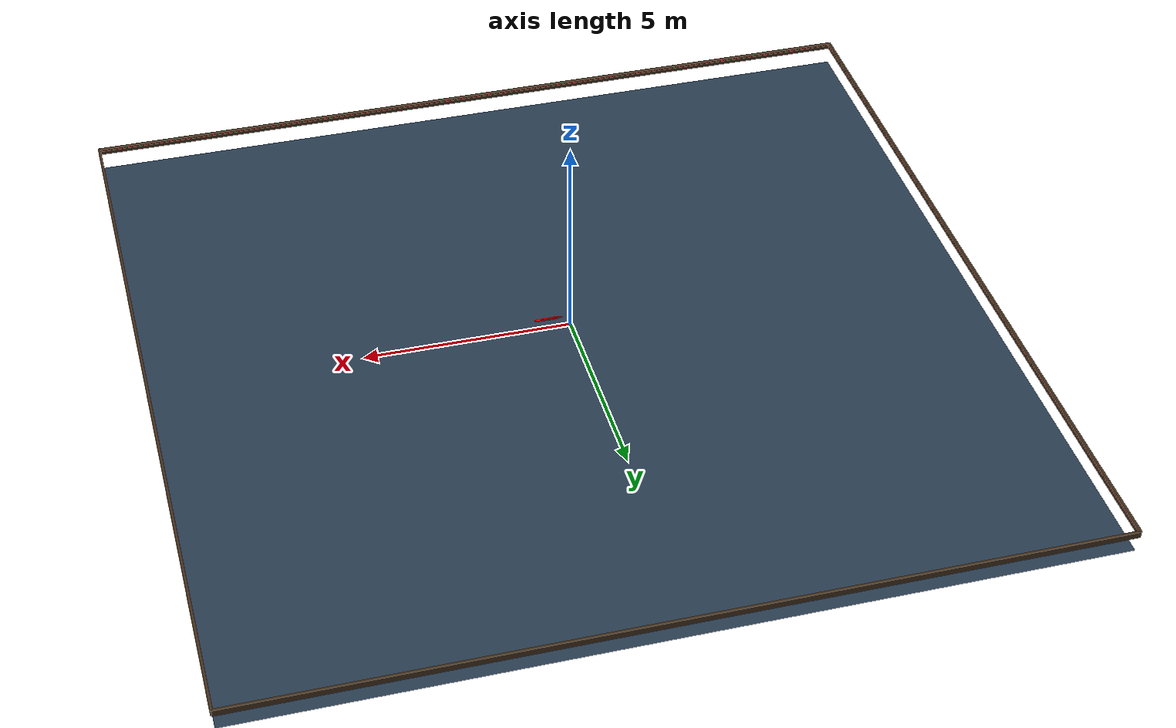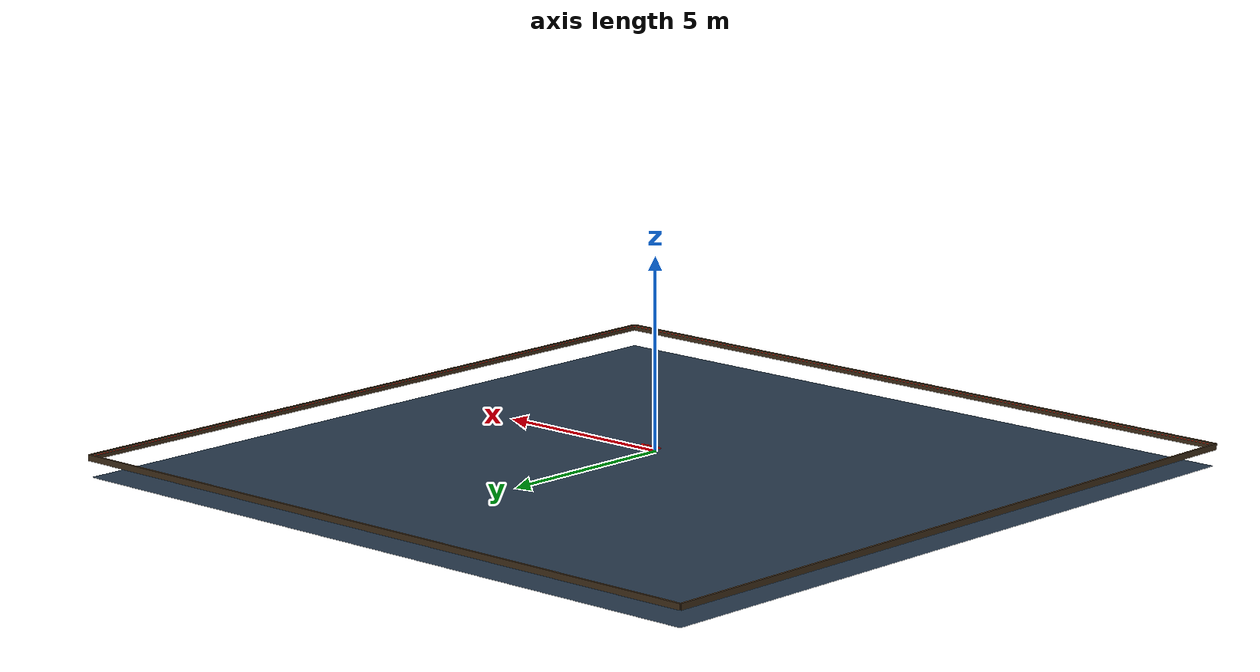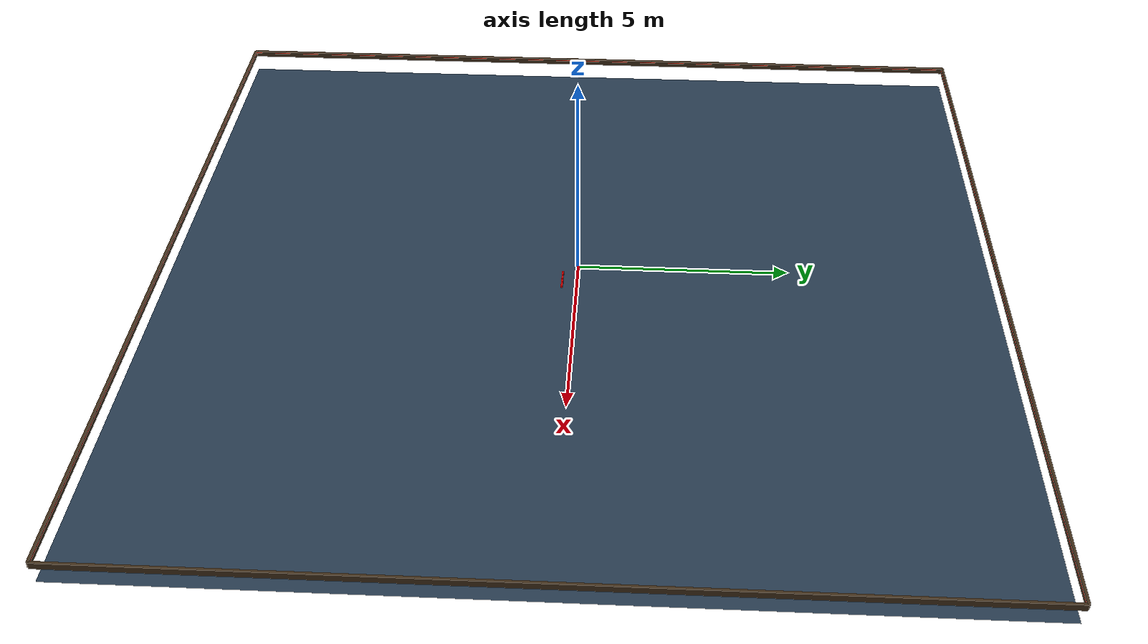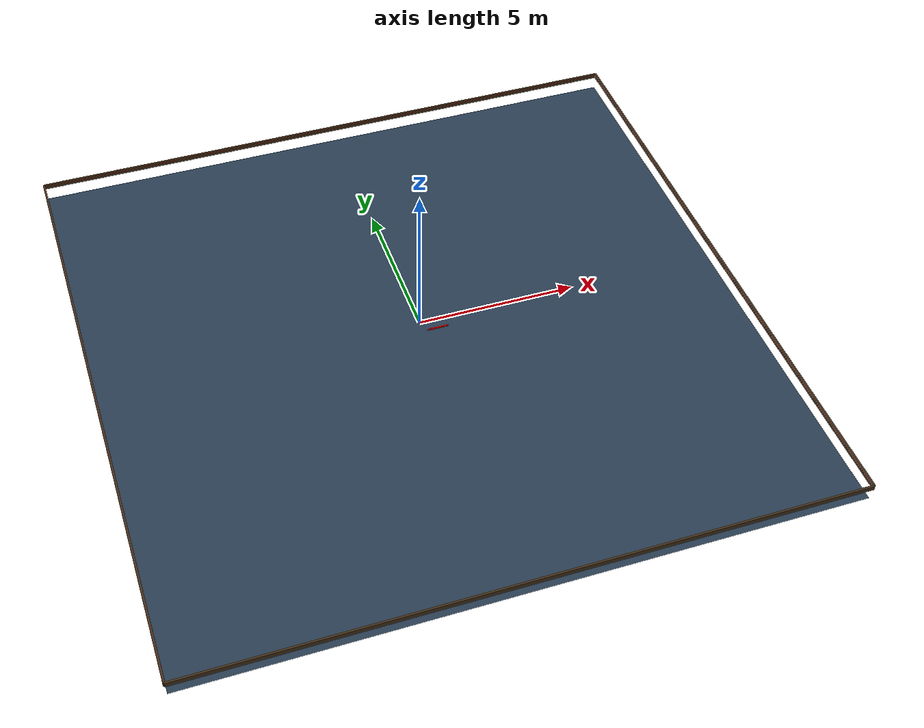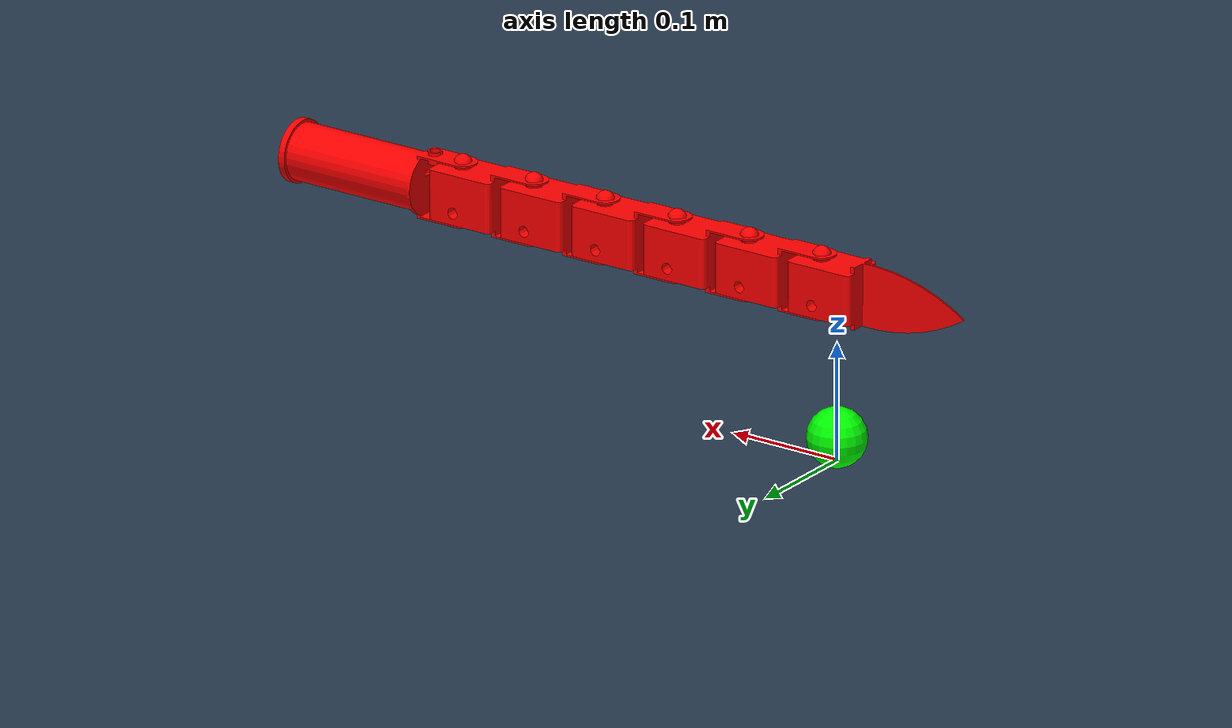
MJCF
<mujoco model="eel_urdf">
  <compiler angle="radian" meshdir="eel_urdf/meshes" />
  <include file="water_settings.xml" />
  <visual>
    <global fovy="45" offwidth="1920" offheight="1080" />
    <quality shadowsize="0" />
    <rgba fog="0 0.5 0.8 1" />
    <map fogstart="1" fogend="5" />
  </visual>
  <asset>
    <mesh name="base_link_mesh" file="base_link.STL" />
    <mesh name="servo1_mesh" file="servo1.STL" />
    <mesh name="servo2_mesh" file="servo2.STL" />
    <mesh name="servo3_mesh" file="servo3.STL" />
    <mesh name="servo4_mesh" file="servo4.STL" />
    <mesh name="servo5_mesh" file="servo5.STL" />
    <mesh name="servo6_mesh" file="servo6.STL" />
    <texture name="texplane" builtin="checker" rgb1=".2 .3 .4" rgb2=".1 .15 .2" type="2d" width="512" height="512" mark="cross" markrgb=".8 .8 .8" />
    <material name="matplane" reflectance="0.5" texture="texplane" texrepeat="4 4" texuniform="true" />
    <material name="water_visual_mat" rgba="0 0.4 0.9 0.2" reflectance="0" shininess="0" specular="0" />
    <material name="wall_brown_mat" rgba="0.25 0.18 0.10 1" reflectance="0.02" specular="0" shininess="0" />
    <material name="eel_mat" rgba="0.79216 0.81961 0.93333 1" reflectance="0.2" specular="0.35" shininess="0.4" />
    <material name="joint_marker_red" rgba="1 0 0 1" specular="0" shininess="0" reflectance="0" />
  </asset>
  <contact>
    <exclude body1="base_link" body2="servo1" />
    <exclude body1="servo1" body2="servo2" />
    <exclude body1="servo2" body2="servo3" />
    <exclude body1="servo3" body2="servo4" />
    <exclude body1="servo4" body2="servo5" />
    <exclude body1="servo5" body2="servo6" />
  </contact>
  <worldbody>
    <include file="environment_3x1_5.xml" />
    <include file="eel_body.xml" />
  </worldbody>
  <actuator>
    <position joint="servo1" kp="100" />
    <position joint="servo2" kp="100" />
    <position joint="servo3" kp="100" />
    <position joint="servo4" kp="100" />
    <position joint="servo5" kp="100" />
    <position joint="servo6" kp="100" />
  </actuator>
</mujoco>

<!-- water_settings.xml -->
<mujoco>
  <!-- Central water / fluid parameters. Edit this file first. -->
  <option timestep="0.001" integrator="RK4" density="998" viscosity="0.001" gravity="0 0 -9.81" />

  <default>
    <!-- Real mesh geoms handle collision only. -->
    <default class="eel_collision_mesh">
      <geom contype="2" conaffinity="1" group="0" rgba="1 0 0 1" />
    </default>

    <!-- Invisible simple capsules handle fluid force. Tune size in eel_body.xml if turning radius is still too large. -->
    <default class="eel_fluid_proxy">
      <geom contype="0" conaffinity="0" group="3" rgba="0 0.8 1 0.0"
            fluidshape="ellipsoid" fluidcoef="0.35 0.0 0.35 0.65 0.65" />
    </default>
  </default>
</mujoco>

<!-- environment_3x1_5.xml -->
<mujoco>
  <light directional="true" pos="0 0 5" dir="0 0 -1"
         diffuse="0.6 0.6 0.6" specular="0.15 0.15 0.15"/>
  <light pos="6.0 6.0 1" diffuse="0.15 0.2 0.25" specular="0 0 0"/>
  <light pos="-6.0 0 1" diffuse="0.25 0.25 0.3" specular="0 0 0"/>

  <!-- Shared 20 m x 20 m tank. X/Y range is -10 ~ +10 m. -->
  <geom name="floor" pos="0 0 -0.5" size="10 10 0.1" type="plane" material="matplane" contype="1" conaffinity="1"/>
  <geom name="water_surface" type="plane" pos="0 0 0" size="9.95 9.95 0.01" material="water_visual_mat" contype="0" conaffinity="0" group="1"/>

  <geom name="course_bottom" type="capsule" fromto="-10 -10 0.01 10 -10 0.01" size="0.006"
        rgba="1 0.15 0.05 0.9" contype="0" conaffinity="0" group="1"/>
  <geom name="course_right" type="capsule" fromto="10 -10 0.01 10 10 0.01" size="0.006"
        rgba="1 0.15 0.05 0.9" contype="0" conaffinity="0" group="1"/>
  <geom name="course_top" type="capsule" fromto="10 10 0.01 -10 10 0.01" size="0.006"
        rgba="1 0.15 0.05 0.9" contype="0" conaffinity="0" group="1"/>
  <geom name="course_left" type="capsule" fromto="-10 10 0.01 -10 -10 0.01" size="0.006"
        rgba="1 0.15 0.05 0.9" contype="0" conaffinity="0" group="1"/>

  <!-- Visual-only boards around the large tank; no collision in the shared viewer/training pool. -->
  <geom name="wall_bottom" type="box" pos="0 -10.03 -0.02" size="10.03 0.03 0.08"
        material="wall_brown_mat" contype="0" conaffinity="0" group="0"/>
  <geom name="wall_top" type="box" pos="0 10.03 -0.02" size="10.03 0.03 0.08"
        material="wall_brown_mat" contype="0" conaffinity="0" group="0"/>
  <geom name="wall_left" type="box" pos="-10.03 0 -0.02" size="0.03 10.03 0.08"
        material="wall_brown_mat" contype="0" conaffinity="0" group="0"/>
  <geom name="wall_right" type="box" pos="10.03 0 -0.02" size="0.03 10.03 0.08"
        material="wall_brown_mat" contype="0" conaffinity="0" group="0"/>

  <geom name="start_marker" type="sphere" pos="0 0 0.02" size="0.025"
        rgba="0 1 0 0.9" contype="0" conaffinity="0" group="1"/>
</mujoco>

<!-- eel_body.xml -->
<mujoco>
    <body name="base_link" pos="0.65 -0.35 -0.02">
      <joint name="root_x" type="slide" pos="0 0 0" axis="1 0 0" limited="false" armature="0.01" damping="0.1" />
      <joint name="root_y" type="slide" pos="0 0 0" axis="0 1 0" limited="false" armature="0.01" damping="0.1" />
      <joint name="root_z_rot" type="hinge" pos="0 0 0" axis="0 0 1" limited="false" armature="0.01" damping="0.1" />
      <inertial pos="0.062748 2.5587E-16 0.00026796" mass="0.083903" fullinertia="4.3479E-05 9.8485E-05 9.6089E-05 -1.3947E-21 5.4417E-08 -3.0251E-23" />
      <geom name="base_link_collision" type="mesh" mesh="base_link_mesh" class="eel_collision_mesh" />
      <geom name="base_link_fluid" type="capsule" fromto="0.000 0 0 0.120 0 0" size="0.030" class="eel_fluid_proxy" />
      <geom name="base_link_visual" type="mesh" mesh="base_link_mesh" contype="0" conaffinity="0" group="1" material="eel_mat" />
      <body name="servo1" pos="-0.035 0 0.025706">
        <geom name="servo1_joint_marker" type="sphere" size="0.008" pos="0 0 0" material="joint_marker_red" contype="0" conaffinity="0" group="2" />
        <inertial pos="-0.01159 -6.9584E-08 -0.025118" mass="0.11323" fullinertia="3.6169E-05 6.3328E-05 5.9619E-05 -4.7019E-10 -1.6398E-07 -4.8085E-12" />
        <joint name="servo1" pos="0 0 0" axis="0 0 -1" range="-1.5 1.5" actuatorfrcrange="-10 10" armature="0.05" damping="1.5" />
        <geom name="servo1_collision" type="mesh" mesh="servo1_mesh" class="eel_collision_mesh" />
        <geom name="servo1_fluid" type="capsule" fromto="-0.070 0 0 -0.005 0 0" size="0.030" class="eel_fluid_proxy" />
        <geom name="servo1_visual" type="mesh" mesh="servo1_mesh" contype="0" conaffinity="0" group="1" material="eel_mat" />
        <body name="servo2" pos="-0.072 0 0">
          <geom name="servo2_joint_marker" type="sphere" size="0.008" pos="0 0 0" material="joint_marker_red" contype="0" conaffinity="0" group="2" />
          <inertial pos="-0.01159 -6.9584E-08 -0.025118" mass="0.11323" fullinertia="3.6169E-05 6.3328E-05 5.9619E-05 -4.7019E-10 -1.6398E-07 -4.8085E-12" />
          <joint name="servo2" pos="0 0 0" axis="0 0 -1" range="-1.5 1.5" actuatorfrcrange="-10 10" armature="0.05" damping="1.5" />
          <geom name="servo2_collision" type="mesh" mesh="servo2_mesh" class="eel_collision_mesh" />
          <geom name="servo2_fluid" type="capsule" fromto="-0.070 0 0 -0.005 0 0" size="0.030" class="eel_fluid_proxy" />
          <geom name="servo2_visual" type="mesh" mesh="servo2_mesh" contype="0" conaffinity="0" group="1" material="eel_mat" />
          <body name="servo3" pos="-0.072 0 0">
            <geom name="servo3_joint_marker" type="sphere" size="0.008" pos="0 0 0" material="joint_marker_red" contype="0" conaffinity="0" group="2" />
            <inertial pos="-0.01159 -6.9584E-08 -0.025118" mass="0.11323" fullinertia="3.6169E-05 6.3328E-05 5.9619E-05 -4.7019E-10 -1.6398E-07 -4.8085E-12" />
            <joint name="servo3" pos="0 0 0" axis="0 0 -1" range="-1.5 1.5" actuatorfrcrange="-10 10" armature="0.05" damping="1.5" />
            <geom name="servo3_collision" type="mesh" mesh="servo3_mesh" class="eel_collision_mesh" />
            <geom name="servo3_fluid" type="capsule" fromto="-0.070 0 0 -0.005 0 0" size="0.030" class="eel_fluid_proxy" />
            <geom name="servo3_visual" type="mesh" mesh="servo3_mesh" contype="0" conaffinity="0" group="1" material="eel_mat" />
            <body name="servo4" pos="-0.072 0 0">
              <geom name="servo4_joint_marker" type="sphere" size="0.008" pos="0 0 0" material="joint_marker_red" contype="0" conaffinity="0" group="2" />
              <inertial pos="-0.01159 -6.9584E-08 -0.025118" mass="0.11323" fullinertia="3.6169E-05 6.3328E-05 5.9619E-05 -4.7019E-10 -1.6398E-07 -4.8085E-12" />
              <joint name="servo4" pos="0 0 0" axis="0 0 -1" range="-1.5 1.5" actuatorfrcrange="-10 10" armature="0.05" damping="1.5" />
              <geom name="servo4_collision" type="mesh" mesh="servo4_mesh" class="eel_collision_mesh" />
              <geom name="servo4_fluid" type="capsule" fromto="-0.070 0 0 -0.005 0 0" size="0.030" class="eel_fluid_proxy" />
              <geom name="servo4_visual" type="mesh" mesh="servo4_mesh" contype="0" conaffinity="0" group="1" material="eel_mat" />
              <body name="servo5" pos="-0.072 0 0">
                <geom name="servo5_joint_marker" type="sphere" size="0.008" pos="0 0 0" material="joint_marker_red" contype="0" conaffinity="0" group="2" />
                <inertial pos="-0.01159 -6.9584E-08 -0.025118" mass="0.11323" fullinertia="3.6169E-05 6.3328E-05 5.9619E-05 -4.7019E-10 -1.6398E-07 -4.8085E-12" />
                <joint name="servo5" pos="0 0 0" axis="0 0 -1" range="-1.5 1.5" actuatorfrcrange="-10 10" armature="0.05" damping="1.5" />
                <geom name="servo5_collision" type="mesh" mesh="servo5_mesh" class="eel_collision_mesh" />
                <geom name="servo5_fluid" type="capsule" fromto="-0.070 0 0 -0.005 0 0" size="0.030" class="eel_fluid_proxy" />
                <geom name="servo5_visual" type="mesh" mesh="servo5_mesh" contype="0" conaffinity="0" group="1" material="eel_mat" />
                <body name="servo6" pos="-0.072 0 0">
                  <geom name="servo6_joint_marker" type="sphere" size="0.008" pos="0 0 0" material="joint_marker_red" contype="0" conaffinity="0" group="2" />
                  <inertial pos="-0.013811 2.5153E-17 -0.025129" mass="0.11626" fullinertia="3.5103E-05 8.4443E-05 8.1511E-05 2.7809E-20 -3.1447E-07 1.5836E-20" />
                  <joint name="servo6" pos="0 0 0" axis="0 0 -1" range="-1.5 1.5" actuatorfrcrange="-10 10" armature="0.05" damping="1.5" />
                  <geom name="servo6_collision" type="mesh" mesh="servo6_mesh" class="eel_collision_mesh" />
                  <geom name="servo6_fluid" type="capsule" fromto="-0.070 0 0 -0.005 0 0" size="0.030" class="eel_fluid_proxy" />
                  <geom name="servo6_visual" type="mesh" mesh="servo6_mesh" contype="0" conaffinity="0" group="1" material="eel_mat" />
                </body>
              </body>
            </body>
          </body>
        </body>
      </body>
    </body>
</mujoco>
